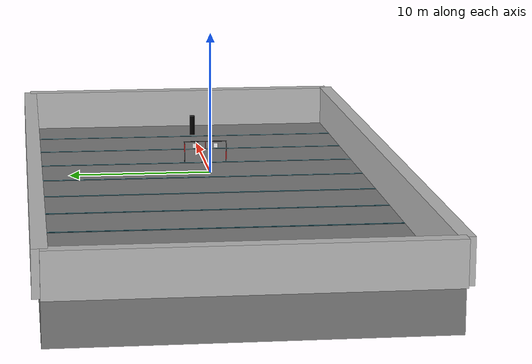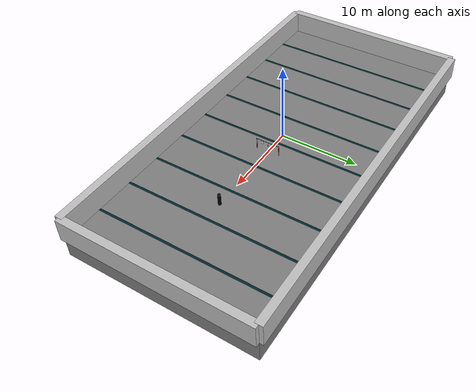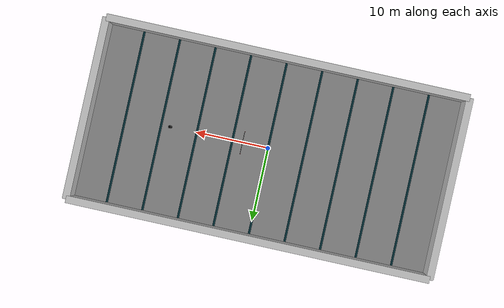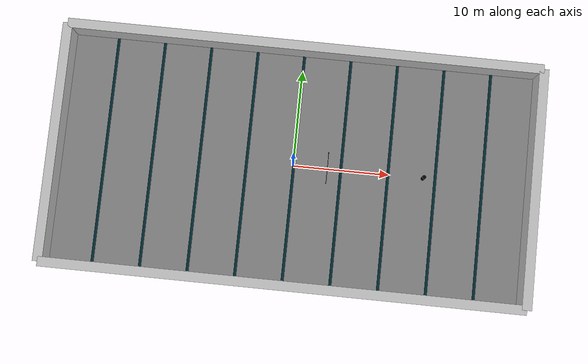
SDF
<sdf version='1.10'>
  <world name='underwater_world'>
    <scene>
      <ambient>0.200000003 1 1 1</ambient>
      <background>0 0.699999988 0.800000012 1</background>
      <shadows>true</shadows>
    </scene>
    <physics name='1ms' type='dart'>
      <max_step_size>0.001</max_step_size>
      <real_time_factor>1</real_time_factor>
      <real_time_update_rate>1000</real_time_update_rate>
    </physics>
    <plugin name='gz::sim::systems::Physics' filename='gz-sim-physics-system'/>
    <plugin name='gz::sim::systems::Sensors' filename='gz-sim-sensors-system'>
      <render_engine>ogre2</render_engine>
    </plugin>
    <plugin name='gz::sim::systems::UserCommands' filename='gz-sim-user-commands-system'/>
    <plugin name='gz::sim::systems::SceneBroadcaster' filename='gz-sim-scene-broadcaster-system'/>
    <plugin name='gz::sim::systems::Buoyancy' filename='gz-sim-buoyancy-system'>
      <uniform_fluid_density>1025</uniform_fluid_density>
    </plugin>
    <gravity>0 0 -9.8000000000000007</gravity>
    <magnetic_field>5.5644999999999998e-06 2.2875799999999999e-05 -4.2388400000000002e-05</magnetic_field>
    <atmosphere type='adiabatic'/>
    <model name='floor'>
      <static>true</static>
      <pose>0 0 -3 0 0 0</pose>
      <link name='link'>
        <visual name='v'>
          <geometry>
            <box>
              <size>50 25 3</size>
            </box>
          </geometry>
          <material>
            <diffuse>0.5 0.5 0.5 1</diffuse>
            <pbr>
              <metal>
                <roughness>1.0</roughness>
                <albedo>0.5 0.5 0.5 1</albedo>
              </metal>
            </pbr>
          </material>
        </visual>
        <pose>0 0 0 0 0 0</pose>
        <inertial>
          <pose>0 0 0 0 0 0</pose>
          <mass>1</mass>
          <inertia>
            <ixx>1</ixx>
            <ixy>0</ixy>
            <ixz>0</ixz>
            <iyy>1</iyy>
            <iyz>0</iyz>
            <izz>1</izz>
          </inertia>
        </inertial>
        <enable_wind>false</enable_wind>
      </link>
      <self_collide>false</self_collide>
    </model>
    <model name='long_wall_1'>
      <static>true</static>
      <pose>0 -12.5 0 0 0 0</pose>
      <link name='link'>
        <visual name='v'>
          <geometry>
            <box>
              <size>50 1 3</size>
            </box>
          </geometry>
          <material>
            <diffuse>0.75 0.75 0.75 1</diffuse>
            <specular>0.100000001 0.100000001 0.100000001 1</specular>
            <pbr>
              <metal>
                <roughness>0.9</roughness>
                <albedo>0.75 0.75 0.75 1</albedo>
              </metal>
            </pbr>
          </material>
        </visual>
        <pose>0 0 0 0 0 0</pose>
        <inertial>
          <pose>0 0 0 0 0 0</pose>
          <mass>1</mass>
          <inertia>
            <ixx>1</ixx>
            <ixy>0</ixy>
            <ixz>0</ixz>
            <iyy>1</iyy>
            <iyz>0</iyz>
            <izz>1</izz>
          </inertia>
        </inertial>
        <enable_wind>false</enable_wind>
      </link>
      <self_collide>false</self_collide>
    </model>
    <model name='long_wall_2'>
      <static>true</static>
      <pose>0 12.5 0 0 0 0</pose>
      <link name='link'>
        <visual name='v'>
          <geometry>
            <box>
              <size>50 1 3</size>
            </box>
          </geometry>
          <material>
            <diffuse>0.75 0.75 0.75 1</diffuse>
            <specular>0.100000001 0.100000001 0.100000001 1</specular>
            <pbr>
              <metal>
                <roughness>0.9</roughness>
                <albedo>0.75 0.75 0.75 1</albedo>
              </metal>
            </pbr>
          </material>
        </visual>
        <collision name='c'>
          <geometry>
            <box>
              <size>50 1 3</size>
            </box>
          </geometry>
          <surface>
            <friction>
              <ode/>
            </friction>
            <bounce/>
            <contact/>
          </surface>
        </collision>
        <pose>0 0 0 0 0 0</pose>
        <inertial>
          <pose>0 0 0 0 0 0</pose>
          <mass>1</mass>
          <inertia>
            <ixx>1</ixx>
            <ixy>0</ixy>
            <ixz>0</ixz>
            <iyy>1</iyy>
            <iyz>0</iyz>
            <izz>1</izz>
          </inertia>
        </inertial>
        <enable_wind>false</enable_wind>
      </link>
      <self_collide>false</self_collide>
    </model>
    <model name='wide_wall_1'>
      <static>true</static>
      <pose>25 0 0 0 0 1.5699999999999998</pose>
      <link name='link'>
        <visual name='v'>
          <geometry>
            <box>
              <size>25 1 3</size>
            </box>
          </geometry>
          <material>
            <diffuse>0.75 0.75 0.75 1</diffuse>
            <specular>0.100000001 0.100000001 0.100000001 1</specular>
            <pbr>
              <metal>
                <roughness>0.9</roughness>
                <albedo>0.75 0.75 0.75 1</albedo>
              </metal>
            </pbr>
          </material>
        </visual>
        <collision name='c'>
          <geometry>
            <box>
              <size>25 1 3</size>
            </box>
          </geometry>
          <surface>
            <friction>
              <ode/>
            </friction>
            <bounce/>
            <contact/>
          </surface>
        </collision>
        <pose>0 0 0 0 0 0</pose>
        <inertial>
          <pose>0 0 0 0 0 0</pose>
          <mass>1</mass>
          <inertia>
            <ixx>1</ixx>
            <ixy>0</ixy>
            <ixz>0</ixz>
            <iyy>1</iyy>
            <iyz>0</iyz>
            <izz>1</izz>
          </inertia>
        </inertial>
        <enable_wind>false</enable_wind>
      </link>
      <self_collide>false</self_collide>
    </model>
    <model name='wide_wall_2'>
      <static>true</static>
      <pose>-25 0 0 0 0 1.5699999999999998</pose>
      <link name='link'>
        <visual name='v'>
          <geometry>
            <box>
              <size>25 1 3</size>
            </box>
          </geometry>
          <material>
            <diffuse>0.75 0.75 0.75 1</diffuse>
            <specular>0.100000001 0.100000001 0.100000001 1</specular>
            <pbr>
              <metal>
                <roughness>0.9</roughness>
                <albedo>0.75 0.75 0.75 1</albedo>
              </metal>
            </pbr>
          </material>
        </visual>
        <collision name='c'>
          <geometry>
            <box>
              <size>25 1 3</size>
            </box>
          </geometry>
          <surface>
            <friction>
              <ode/>
            </friction>
            <bounce/>
            <contact/>
          </surface>
        </collision>
        <pose>0 0 0 0 0 0</pose>
        <inertial>
          <pose>0 0 0 0 0 0</pose>
          <mass>1</mass>
          <inertia>
            <ixx>1</ixx>
            <ixy>0</ixy>
            <ixz>0</ixz>
            <iyy>1</iyy>
            <iyz>0</iyz>
            <izz>1</izz>
          </inertia>
        </inertial>
        <enable_wind>false</enable_wind>
      </link>
      <self_collide>false</self_collide>
    </model>
    <model name='lane1'>
      <static>true</static>
      <pose>-20 0 -1.49 0 0 0</pose>
      <link name='l'>
        <visual name='v'>
          <geometry>
            <box>
              <size>0.29999999999999999 25 0.01</size>
            </box>
          </geometry>
          <material>
            <ambient>0 0.150000006 0.180000007 1</ambient>
          </material>
        </visual>
        <pose>0 0 0 0 0 0</pose>
        <inertial>
          <pose>0 0 0 0 0 0</pose>
          <mass>1</mass>
          <inertia>
            <ixx>1</ixx>
            <ixy>0</ixy>
            <ixz>0</ixz>
            <iyy>1</iyy>
            <iyz>0</iyz>
            <izz>1</izz>
          </inertia>
        </inertial>
        <enable_wind>false</enable_wind>
      </link>
      <self_collide>false</self_collide>
    </model>
    <model name='lane2'>
      <static>true</static>
      <pose>-15 0 -1.49 0 0 0</pose>
      <link name='l'>
        <visual name='v'>
          <geometry>
            <box>
              <size>0.29999999999999999 25 0.01</size>
            </box>
          </geometry>
          <material>
            <ambient>0 0.150000006 0.180000007 1</ambient>
          </material>
        </visual>
        <pose>0 0 0 0 0 0</pose>
        <inertial>
          <pose>0 0 0 0 0 0</pose>
          <mass>1</mass>
          <inertia>
            <ixx>1</ixx>
            <ixy>0</ixy>
            <ixz>0</ixz>
            <iyy>1</iyy>
            <iyz>0</iyz>
            <izz>1</izz>
          </inertia>
        </inertial>
        <enable_wind>false</enable_wind>
      </link>
      <self_collide>false</self_collide>
    </model>
    <model name='lane3'>
      <static>true</static>
      <pose>-10 0 -1.49 0 0 0</pose>
      <link name='l'>
        <visual name='v'>
          <geometry>
            <box>
              <size>0.29999999999999999 25 0.01</size>
            </box>
          </geometry>
          <material>
            <ambient>0 0.150000006 0.180000007 1</ambient>
          </material>
        </visual>
        <pose>0 0 0 0 0 0</pose>
        <inertial>
          <pose>0 0 0 0 0 0</pose>
          <mass>1</mass>
          <inertia>
            <ixx>1</ixx>
            <ixy>0</ixy>
            <ixz>0</ixz>
            <iyy>1</iyy>
            <iyz>0</iyz>
            <izz>1</izz>
          </inertia>
        </inertial>
        <enable_wind>false</enable_wind>
      </link>
      <self_collide>false</self_collide>
    </model>
    <model name='lane4'>
      <static>true</static>
      <pose>-5 0 -1.49 0 0 0</pose>
      <link name='l'>
        <visual name='v'>
          <geometry>
            <box>
              <size>0.29999999999999999 25 0.01</size>
            </box>
          </geometry>
          <material>
            <ambient>0 0.150000006 0.180000007 1</ambient>
          </material>
        </visual>
        <pose>0 0 0 0 0 0</pose>
        <inertial>
          <pose>0 0 0 0 0 0</pose>
          <mass>1</mass>
          <inertia>
            <ixx>1</ixx>
            <ixy>0</ixy>
            <ixz>0</ixz>
            <iyy>1</iyy>
            <iyz>0</iyz>
            <izz>1</izz>
          </inertia>
        </inertial>
        <enable_wind>false</enable_wind>
      </link>
      <self_collide>false</self_collide>
    </model>
    <model name='lane5'>
      <static>true</static>
      <pose>0 0 -1.49 0 0 0</pose>
      <link name='l'>
        <visual name='v'>
          <geometry>
            <box>
              <size>0.29999999999999999 25 0.01</size>
            </box>
          </geometry>
          <material>
            <ambient>0 0.150000006 0.180000007 1</ambient>
          </material>
        </visual>
        <pose>0 0 0 0 0 0</pose>
        <inertial>
          <pose>0 0 0 0 0 0</pose>
          <mass>1</mass>
          <inertia>
            <ixx>1</ixx>
            <ixy>0</ixy>
            <ixz>0</ixz>
            <iyy>1</iyy>
            <iyz>0</iyz>
            <izz>1</izz>
          </inertia>
        </inertial>
        <enable_wind>false</enable_wind>
      </link>
      <self_collide>false</self_collide>
    </model>
    <model name='lane6'>
      <static>true</static>
      <pose>5 0 -1.49 0 0 0</pose>
      <link name='l'>
        <visual name='v'>
          <geometry>
            <box>
              <size>0.29999999999999999 25 0.01</size>
            </box>
          </geometry>
          <material>
            <ambient>0 0.150000006 0.180000007 1</ambient>
          </material>
        </visual>
        <pose>0 0 0 0 0 0</pose>
        <inertial>
          <pose>0 0 0 0 0 0</pose>
          <mass>1</mass>
          <inertia>
            <ixx>1</ixx>
            <ixy>0</ixy>
            <ixz>0</ixz>
            <iyy>1</iyy>
            <iyz>0</iyz>
            <izz>1</izz>
          </inertia>
        </inertial>
        <enable_wind>false</enable_wind>
      </link>
      <self_collide>false</self_collide>
    </model>
    <model name='lane7'>
      <static>true</static>
      <pose>10 0 -1.49 0 0 0</pose>
      <link name='l'>
        <visual name='v'>
          <geometry>
            <box>
              <size>0.29999999999999999 25 0.01</size>
            </box>
          </geometry>
          <material>
            <ambient>0 0.150000006 0.180000007 1</ambient>
          </material>
        </visual>
        <pose>0 0 0 0 0 0</pose>
        <inertial>
          <pose>0 0 0 0 0 0</pose>
          <mass>1</mass>
          <inertia>
            <ixx>1</ixx>
            <ixy>0</ixy>
            <ixz>0</ixz>
            <iyy>1</iyy>
            <iyz>0</iyz>
            <izz>1</izz>
          </inertia>
        </inertial>
        <enable_wind>false</enable_wind>
      </link>
      <self_collide>false</self_collide>
    </model>
    <model name='lane8'>
      <static>true</static>
      <pose>15 0 -1.49 0 0 0</pose>
      <link name='l'>
        <visual name='v'>
          <geometry>
            <box>
              <size>0.29999999999999999 25 0.01</size>
            </box>
          </geometry>
          <material>
            <ambient>0 0.150000006 0.180000007 1</ambient>
          </material>
        </visual>
        <pose>0 0 0 0 0 0</pose>
        <inertial>
          <pose>0 0 0 0 0 0</pose>
          <mass>1</mass>
          <inertia>
            <ixx>1</ixx>
            <ixy>0</ixy>
            <ixz>0</ixz>
            <iyy>1</iyy>
            <iyz>0</iyz>
            <izz>1</izz>
          </inertia>
        </inertial>
        <enable_wind>false</enable_wind>
      </link>
      <self_collide>false</self_collide>
    </model>
    <model name='lane9'>
      <static>true</static>
      <pose>20 0 -1.49 0 0 0</pose>
      <link name='l'>
        <visual name='v'>
          <geometry>
            <box>
              <size>0.29999999999999999 25 0.01</size>
            </box>
          </geometry>
          <material>
            <ambient>0 0.150000006 0.180000007 1</ambient>
          </material>
        </visual>
        <pose>0 0 0 0 0 0</pose>
        <inertial>
          <pose>0 0 0 0 0 0</pose>
          <mass>1</mass>
          <inertia>
            <ixx>1</ixx>
            <ixy>0</ixy>
            <ixz>0</ixz>
            <iyy>1</iyy>
            <iyz>0</iyz>
            <izz>1</izz>
          </inertia>
        </inertial>
        <enable_wind>false</enable_wind>
      </link>
      <self_collide>false</self_collide>
    </model>
    <model name='Gate'>
      <static>true</static>
      <link name='gate_frame'>
        <visual name='left_leg_pvc'>
          <pose>-1.524 0 0.76200000000000001 0 0 0</pose>
          <geometry>
            <cylinder>
              <radius>0.025399999999999999</radius>
              <length>1.524</length>
            </cylinder>
          </geometry>
          <material>
            <diffuse>0.200000003 0.200000003 0.200000003 1</diffuse>
            <pbr>
              <metal>
                <albedo>0.2 0.2 0.2 1</albedo>
              </metal>
            </pbr>
          </material>
        </visual>
        <visual name='right_leg_pvc'>
          <pose>1.524 0 0.76200000000000001 0 0 0</pose>
          <geometry>
            <cylinder>
              <radius>0.025399999999999999</radius>
              <length>1.524</length>
            </cylinder>
          </geometry>
          <material>
            <diffuse>0.200000003 0.200000003 0.200000003 1</diffuse>
            <pbr>
              <metal>
                <albedo>0.2 0.2 0.2 1</albedo>
              </metal>
            </pbr>
          </material>
        </visual>
        <visual name='top_bar_pvc'>
          <pose>0 0 1.524 3.1415926535897931 1.5707926536359933 3.1415926535897931</pose>
          <geometry>
            <cylinder>
              <radius>0.025399999999999999</radius>
              <length>3.1499999999999999</length>
            </cylinder>
          </geometry>
          <material>
            <diffuse>0.200000003 0.200000003 0.200000003 1</diffuse>
            <pbr>
              <metal>
                <albedo>0.2 0.2 0.2 1</albedo>
              </metal>
            </pbr>
          </material>
        </visual>
        <visual name='left_leg_top_black'>
          <pose>-1.524 0 1.0668 0 0 0</pose>
          <geometry>
            <box>
              <size>0.076200000000000004 0.076200000000000004 0.60960000000000003</size>
            </box>
          </geometry>
          <material>
            <diffuse>0.100000001 0.100000001 0.100000001 1</diffuse>
            <pbr>
              <metal>
                <roughness>0.8</roughness>
                <albedo>0.1 0.1 0.1 1</albedo>
              </metal>
            </pbr>
          </material>
        </visual>
        <visual name='left_leg_bottom_red'>
          <pose>-1.524 0 0.4572 0 0 0</pose>
          <geometry>
            <box>
              <size>0.076200000000000004 0.076200000000000004 0.60960000000000003</size>
            </box>
          </geometry>
          <material>
            <diffuse>0.800000012 0.100000001 0.100000001 1</diffuse>
            <pbr>
              <metal>
                <roughness>0.8</roughness>
                <albedo>0.8 0.1 0.1 1</albedo>
              </metal>
            </pbr>
          </material>
        </visual>
        <collision name='left_leg_col'>
          <pose>-1.524 0 0.76200000000000001 0 0 0</pose>
          <geometry>
            <box>
              <size>0.076200000000000004 0.076200000000000004 1.524</size>
            </box>
          </geometry>
          <surface>
            <friction>
              <ode/>
            </friction>
            <bounce/>
            <contact/>
          </surface>
        </collision>
        <visual name='right_leg_top_red'>
          <pose>1.524 0 1.0668 0 0 0</pose>
          <geometry>
            <box>
              <size>0.076200000000000004 0.076200000000000004 0.60960000000000003</size>
            </box>
          </geometry>
          <material>
            <diffuse>0.800000012 0.100000001 0.100000001 1</diffuse>
            <pbr>
              <metal>
                <roughness>0.8</roughness>
                <albedo>0.8 0.1 0.1 1</albedo>
              </metal>
            </pbr>
          </material>
        </visual>
        <visual name='right_leg_bottom_black'>
          <pose>1.524 0 0.4572 0 0 0</pose>
          <geometry>
            <box>
              <size>0.076200000000000004 0.076200000000000004 0.60960000000000003</size>
            </box>
          </geometry>
          <material>
            <diffuse>0.100000001 0.100000001 0.100000001 1</diffuse>
            <pbr>
              <metal>
                <roughness>0.8</roughness>
                <albedo>0.1 0.1 0.1 1</albedo>
              </metal>
            </pbr>
          </material>
        </visual>
        <collision name='right_leg_col'>
          <pose>1.524 0 0.76200000000000001 0 0 0</pose>
          <geometry>
            <box>
              <size>0.076200000000000004 0.076200000000000004 1.524</size>
            </box>
          </geometry>
          <surface>
            <friction>
              <ode/>
            </friction>
            <bounce/>
            <contact/>
          </surface>
        </collision>
        <visual name='center_divider_red'>
          <pose>0 0 1.2192000000000001 0 0 0</pose>
          <geometry>
            <box>
              <size>0.050799999999999998 0.01 0.60960000000000003</size>
            </box>
          </geometry>
          <material>
            <diffuse>0.800000012 0.100000001 0.100000001 1</diffuse>
            <pbr>
              <metal>
                <roughness>0.8</roughness>
                <albedo>0.8 0.1 0.1 1</albedo>
              </metal>
            </pbr>
          </material>
        </visual>
        <collision name='center_divider_col'>
          <pose>0 0 1.2192000000000001 0 0 0</pose>
          <geometry>
            <box>
              <size>0.050799999999999998 0.01 0.60960000000000003</size>
            </box>
          </geometry>
          <surface>
            <friction>
              <ode/>
            </friction>
            <bounce/>
            <contact/>
          </surface>
        </collision>
        <collision name='top_bar_col'>
          <pose>0 0 1.524 3.1415926535897931 1.5707926536359933 3.1415926535897931</pose>
          <geometry>
            <cylinder>
              <radius>0.025399999999999999</radius>
              <length>3.1499999999999999</length>
            </cylinder>
          </geometry>
          <surface>
            <friction>
              <ode/>
            </friction>
            <bounce/>
            <contact/>
          </surface>
        </collision>
        <pose>0 0 0 0 0 0</pose>
        <inertial>
          <pose>0 0 0 0 0 0</pose>
          <mass>1</mass>
          <inertia>
            <ixx>1</ixx>
            <ixy>0</ixy>
            <ixz>0</ixz>
            <iyy>1</iyy>
            <iyz>0</iyz>
            <izz>1</izz>
          </inertia>
        </inertial>
        <enable_wind>false</enable_wind>
      </link>
      <cast_shadows>false</cast_shadows>
      <pose>3.5 0 0 0 0 1.5708000000000006</pose>
      <self_collide>false</self_collide>
    </model>
    <model name='label_left'>
      <link name='link'>
        <visual name='left_side_label'>
          <pose>0 0 0 0 0 0</pose>
          <geometry>
            <box>
              <size>0.31 0.001 0.33000000000000002</size>
            </box>
          </geometry>
          <cast_shadows>false</cast_shadows>
          <material>
            <diffuse>1 1 1 1</diffuse>
            <specular>0.100000001 0.100000001 0.100000001 1</specular>
            <pbr>
              <metal>
                <albedo_map>model://Gate/meshes/SOS.png</albedo_map>
              </metal>
            </pbr>
          </material>
          <plugin name='gz::sim::systems::Label' filename='gz-sim-label-system'>
            <label>1</label>
          </plugin>
        </visual>
        <pose>0 0 0 0 0 0</pose>
        <inertial>
          <pose>0 0 0 0 0 0</pose>
          <mass>1</mass>
          <inertia>
            <ixx>1</ixx>
            <ixy>0</ixy>
            <ixz>0</ixz>
            <iyy>1</iyy>
            <iyz>0</iyz>
            <izz>1</izz>
          </inertia>
        </inertial>
        <enable_wind>false</enable_wind>
      </link>
      <static>true</static>
      <cast_shadows>false</cast_shadows>
      <pose>3.5 -0.76200000000000001 1.2 0 0 1.5708000000000006</pose>
      <self_collide>false</self_collide>
    </model>
    <model name='label_right'>
      <link name='link'>
        <visual name='right_side_label'>
          <pose>0 0 0 0 0 0</pose>
          <geometry>
            <box>
              <size>0.31 0.001 0.33000000000000002</size>
            </box>
          </geometry>
          <cast_shadows>false</cast_shadows>
          <material>
            <diffuse>1 1 1 1</diffuse>
            <specular>0.100000001 0.100000001 0.100000001 1</specular>
            <pbr>
              <metal>
                <albedo_map>model://Gate/meshes/SnRes.png</albedo_map>
              </metal>
            </pbr>
          </material>
          <plugin name='gz::sim::systems::Label' filename='gz-sim-label-system'>
            <label>1</label>
          </plugin>
        </visual>
        <pose>0 0 0 0 0 0</pose>
        <inertial>
          <pose>0 0 0 0 0 0</pose>
          <mass>1</mass>
          <inertia>
            <ixx>1</ixx>
            <ixy>0</ixy>
            <ixz>0</ixz>
            <iyy>1</iyy>
            <iyz>0</iyz>
            <izz>1</izz>
          </inertia>
        </inertial>
        <enable_wind>false</enable_wind>
      </link>
      <static>true</static>
      <cast_shadows>false</cast_shadows>
      <pose>3.5 0.76200000000000001 1.2 0 0 1.5708000000000006</pose>
      <self_collide>false</self_collide>
    </model>
    <model name='prequal_marker'>
      <static>true</static>
      <pose>13.5 0 0.75 0 0 0</pose>
      <link name='link'>
        <visual name='v'>
          <geometry>
            <cylinder>
              <radius>0.20000000000000001</radius>
              <length>1.5</length>
            </cylinder>
          </geometry>
          <material>
            <ambient>0 0 0 1</ambient>
          </material>
        </visual>
        <pose>0 0 0 0 0 0</pose>
        <inertial>
          <pose>0 0 0 0 0 0</pose>
          <mass>1</mass>
          <inertia>
            <ixx>1</ixx>
            <ixy>0</ixy>
            <ixz>0</ixz>
            <iyy>1</iyy>
            <iyz>0</iyz>
            <izz>1</izz>
          </inertia>
        </inertial>
        <enable_wind>false</enable_wind>
      </link>
      <self_collide>false</self_collide>
    </model>
    <light name='sun1' type='directional'>
      <pose>0 0 10 0 0 0</pose>
      <cast_shadows>false</cast_shadows>
      <intensity>2.5</intensity>
      <direction>-0.5 0.10000000000000001 -0.90000000000000002</direction>
      <diffuse>1 1 1 1</diffuse>
      <specular>0.100000001 0.100000001 0.100000001 1</specular>
      <attenuation>
        <range>10</range>
        <linear>1</linear>
        <constant>1</constant>
        <quadratic>0</quadratic>
      </attenuation>
      <spot>
        <inner_angle>0</inner_angle>
        <outer_angle>0</outer_angle>
        <falloff>0</falloff>
      </spot>
    </light>
    <light name='sun2' type='point'>
      <pose>0 0 10 0 0 0</pose>
      <cast_shadows>false</cast_shadows>
      <intensity>2</intensity>
      <direction>0 0 -1</direction>
      <diffuse>1 1 1 1</diffuse>
      <specular>0.100000001 0.100000001 0.100000001 1</specular>
      <attenuation>
        <range>10</range>
        <linear>1</linear>
        <constant>1</constant>
        <quadratic>0</quadratic>
      </attenuation>
      <spot>
        <inner_angle>0</inner_angle>
        <outer_angle>0</outer_angle>
        <falloff>0</falloff>
      </spot>
    </light>
    <light name='gate_light_1' type='point'>
      <pose>2.5 -2 2 0 0 0</pose>
      <cast_shadows>false</cast_shadows>
      <intensity>1.5</intensity>
      <direction>0 0 -1</direction>
      <diffuse>1 1 1 1</diffuse>
      <specular>0.100000001 0.100000001 0.100000001 1</specular>
      <attenuation>
        <range>10</range>
        <linear>1</linear>
        <constant>1</constant>
        <quadratic>0</quadratic>
      </attenuation>
      <spot>
        <inner_angle>0</inner_angle>
        <outer_angle>0</outer_angle>
        <falloff>0</falloff>
      </spot>
    </light>
    <light name='gate_light_2' type='point'>
      <pose>2.5 2 2 0 0 0</pose>
      <cast_shadows>false</cast_shadows>
      <intensity>1.5</intensity>
      <direction>0 0 -1</direction>
      <diffuse>1 1 1 1</diffuse>
      <specular>0.100000001 0.100000001 0.100000001 1</specular>
      <attenuation>
        <range>10</range>
        <linear>1</linear>
        <constant>1</constant>
        <quadratic>0</quadratic>
      </attenuation>
      <spot>
        <inner_angle>0</inner_angle>
        <outer_angle>0</outer_angle>
        <falloff>0</falloff>
      </spot>
    </light>
    <light name='gate_light_3' type='point'>
      <pose>4.5 -2 2 0 0 0</pose>
      <cast_shadows>false</cast_shadows>
      <intensity>1.5</intensity>
      <direction>0 0 -1</direction>
      <diffuse>1 1 1 1</diffuse>
      <specular>0.100000001 0.100000001 0.100000001 1</specular>
      <attenuation>
        <range>10</range>
        <linear>1</linear>
        <constant>1</constant>
        <quadratic>0</quadratic>
      </attenuation>
      <spot>
        <inner_angle>0</inner_angle>
        <outer_angle>0</outer_angle>
        <falloff>0</falloff>
      </spot>
    </light>
    <light name='gate_light_4' type='point'>
      <pose>4.5 2 2 0 0 0</pose>
      <cast_shadows>false</cast_shadows>
      <intensity>1.5</intensity>
      <direction>0 0 -1</direction>
      <diffuse>1 1 1 1</diffuse>
      <specular>0.100000001 0.100000001 0.100000001 1</specular>
      <attenuation>
        <range>10</range>
        <linear>1</linear>
        <constant>1</constant>
        <quadratic>0</quadratic>
      </attenuation>
      <spot>
        <inner_angle>0</inner_angle>
        <outer_angle>0</outer_angle>
        <falloff>0</falloff>
      </spot>
    </light>
  </world>
</sdf>
